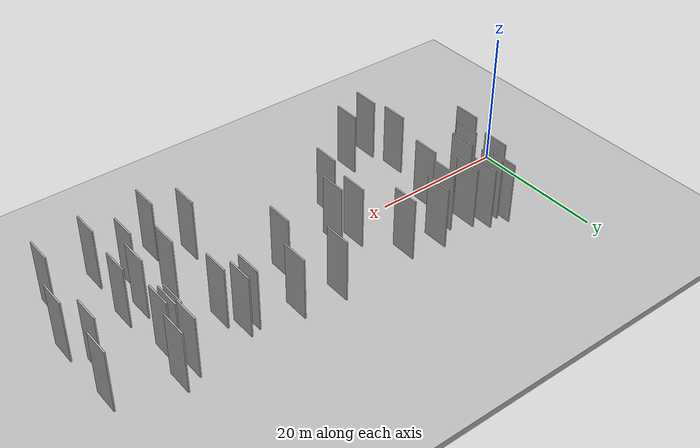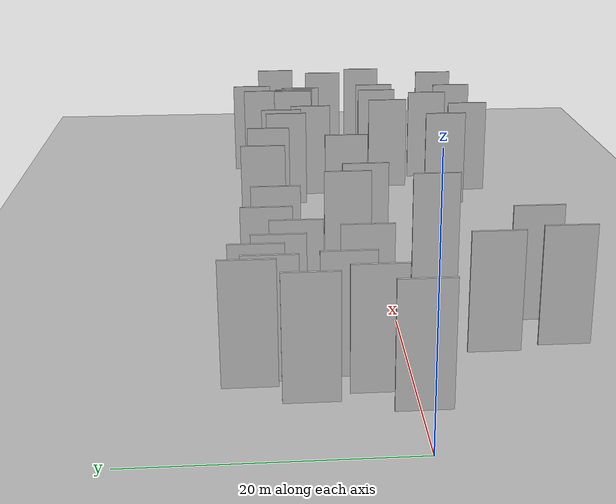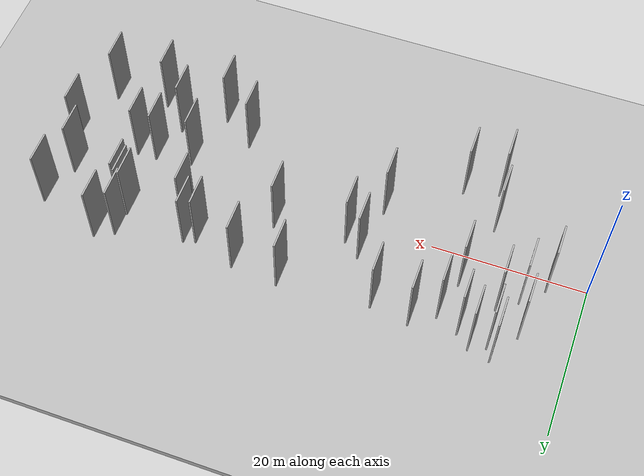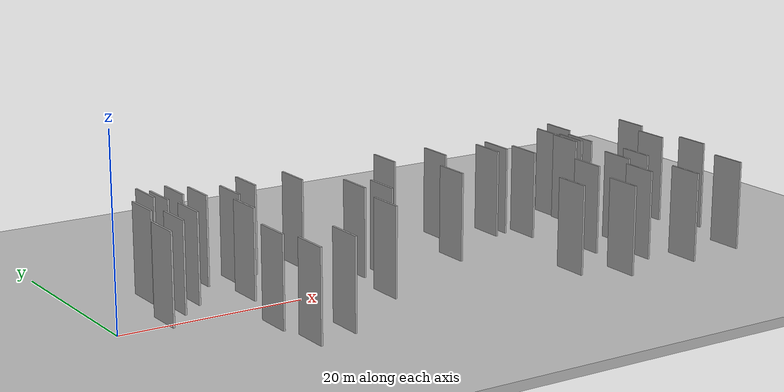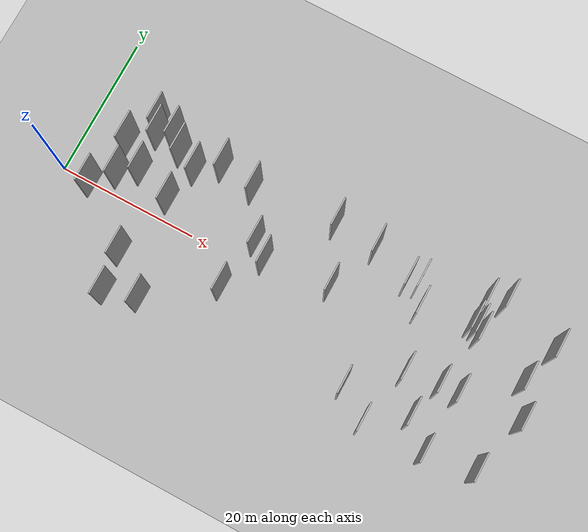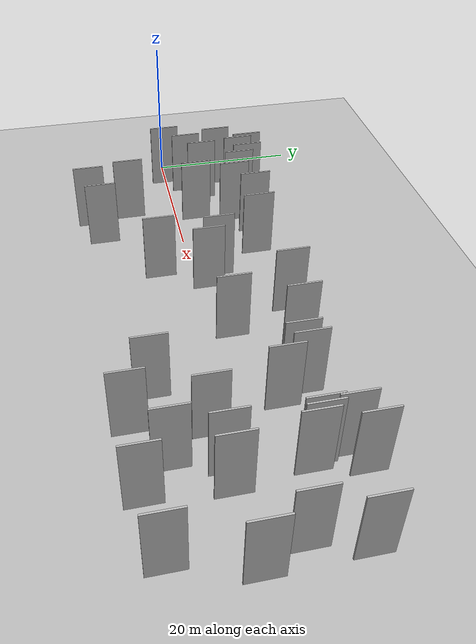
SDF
<?xml version="1.0" encoding="utf-8"?>

<sdf version="1.6">

   <world name="default">

      <gui fullscreen="0">

         <camera name="user_camera">

            <pose>-15 0 4.57585 0 0 0</pose>

            <view_controller>orbit</view_controller>

         </camera>

      </gui>

      <scene>

         <sky>

           <clouds>

             <speed>12</speed>

           </clouds>

         </sky>

         <ambient>0.4 0.4 0.4 1</ambient>

         <background>0.7 0.7 0.7 1</background>

         <shadows>1</shadows>

      </scene>

      <gravity>0 0 -9.8066</gravity>

      <magnetic_field>6e-06 2.3e-05 -4.2e-05</magnetic_field>

      <physics default="0" name="default_physics" type="ode">

         <ode>

            <solver>

               <type>quick</type>

               <iters>10</iters>

               <sor>1.0</sor>

               <use_dynamic_moi_rescaling>0</use_dynamic_moi_rescaling>

            </solver>

            <constraints>

               <cfm>0</cfm>

               <erp>0.2</erp>

               <contact_max_correcting_vel>100</contact_max_correcting_vel>

               <contact_surface_layer>0.001</contact_surface_layer>

            </constraints>

         </ode>

         <max_step_size>0.004</max_step_size>

         <real_time_factor>1</real_time_factor>

         <real_time_update_rate>250</real_time_update_rate>

      </physics>

      <light name="sun" type="directional">

         <cast_shadows>1</cast_shadows>

         <pose>0 0 10 0 0 0</pose>

         <diffuse>0.8 0.8 0.8 1</diffuse>

         <specular>0.2 0.2 0.2 1</specular>

         <attenuation>

            <range>1000</range>

            <constant>0.9</constant>

            <linear>0.01</linear>

            <quadratic>0.001</quadratic>

         </attenuation>

         <direction>-0.5 0.1 -0.9</direction>

      </light>

      <include>

         <name>ground_plane_1</name>

         <uri>model://HANNAS_ground_plane</uri>

         <pose>0 0 0  0 0 0</pose>

      </include>

      <include>

         <name>ground_plane_2</name>

         <uri>model://HANNAS_ground_plane</uri>

         <pose>100 0 0  0 0 0</pose>

      </include>

      <model name="HANNAS_wall_1">

         <static>1</static>

         <pose frame="">60.2114 -10.8449 0.0 0.000000 0.000000 1.570796</pose>

         <link name="link">

            <pose frame="">0 0 5.00 0 0 0</pose>

            <collision name="collision">

               <geometry>

                  <box>

                     <size>4.00 0.2 10.00</size>

                  </box>

               </geometry>

               <max_contacts>10</max_contacts>

               <surface>

                  <contact>

                     <ode/>

                  </contact>

                  <bounce/>

                  <friction>

                     <torsional>

                        <ode/>

                     </torsional>

                     <ode/>

                  </friction>

               </surface>

            </collision>

            <visual name="visual">

               <cast_shadows>0</cast_shadows>

               <geometry>

                  <box>

                     <size>4.00 0.2 10.00</size>

                  </box>

               </geometry>

               <material>

                  <script>

                     <uri>model://HANNAS_wall/materials/scripts</uri>

                     <uri>model://HANNAS_wall/materials/textures</uri>

                     <name>vrc/HANNAS_wall</name>

                  </script>

               </material>

            </visual>

            <self_collide>0</self_collide>

            <enable_wind>0</enable_wind>

            <kinematic>0</kinematic>

         </link>

      </model>

      <model name="HANNAS_wall_2">

         <static>1</static>

         <pose frame="">16.5637 7.9325 0.0 0.000000 0.000000 1.570796</pose>

         <link name="link">

            <pose frame="">0 0 5.00 0 0 0</pose>

            <collision name="collision">

               <geometry>

                  <box>

                     <size>4.00 0.2 10.00</size>

                  </box>

               </geometry>

               <max_contacts>10</max_contacts>

               <surface>

                  <contact>

                     <ode/>

                  </contact>

                  <bounce/>

                  <friction>

                     <torsional>

                        <ode/>

                     </torsional>

                     <ode/>

                  </friction>

               </surface>

            </collision>

            <visual name="visual">

               <cast_shadows>0</cast_shadows>

               <geometry>

                  <box>

                     <size>4.00 0.2 10.00</size>

                  </box>

               </geometry>

               <material>

                  <script>

                     <uri>model://HANNAS_wall/materials/scripts</uri>

                     <uri>model://HANNAS_wall/materials/textures</uri>

                     <name>vrc/HANNAS_wall</name>

                  </script>

               </material>

            </visual>

            <self_collide>0</self_collide>

            <enable_wind>0</enable_wind>

            <kinematic>0</kinematic>

         </link>

      </model>

      <model name="HANNAS_wall_3">

         <static>1</static>

         <pose frame="">24.6656 9.3183 0.0 0.000000 0.000000 1.570796</pose>

         <link name="link">

            <pose frame="">0 0 5.00 0 0 0</pose>

            <collision name="collision">

               <geometry>

                  <box>

                     <size>4.00 0.2 10.00</size>

                  </box>

               </geometry>

               <max_contacts>10</max_contacts>

               <surface>

                  <contact>

                     <ode/>

                  </contact>

                  <bounce/>

                  <friction>

                     <torsional>

                        <ode/>

                     </torsional>

                     <ode/>

                  </friction>

               </surface>

            </collision>

            <visual name="visual">

               <cast_shadows>0</cast_shadows>

               <geometry>

                  <box>

                     <size>4.00 0.2 10.00</size>

                  </box>

               </geometry>

               <material>

                  <script>

                     <uri>model://HANNAS_wall/materials/scripts</uri>

                     <uri>model://HANNAS_wall/materials/textures</uri>

                     <name>vrc/HANNAS_wall</name>

                  </script>

               </material>

            </visual>

            <self_collide>0</self_collide>

            <enable_wind>0</enable_wind>

            <kinematic>0</kinematic>

         </link>

      </model>

      <model name="HANNAS_wall_4">

         <static>1</static>

         <pose frame="">11.8476 10.8924 0.0 0.000000 0.000000 1.570796</pose>

         <link name="link">

            <pose frame="">0 0 5.00 0 0 0</pose>

            <collision name="collision">

               <geometry>

                  <box>

                     <size>4.00 0.2 10.00</size>

                  </box>

               </geometry>

               <max_contacts>10</max_contacts>

               <surface>

                  <contact>

                     <ode/>

                  </contact>

                  <bounce/>

                  <friction>

                     <torsional>

                        <ode/>

                     </torsional>

                     <ode/>

                  </friction>

               </surface>

            </collision>

            <visual name="visual">

               <cast_shadows>0</cast_shadows>

               <geometry>

                  <box>

                     <size>4.00 0.2 10.00</size>

                  </box>

               </geometry>

               <material>

                  <script>

                     <uri>model://HANNAS_wall/materials/scripts</uri>

                     <uri>model://HANNAS_wall/materials/textures</uri>

                     <name>vrc/HANNAS_wall</name>

                  </script>

               </material>

            </visual>

            <self_collide>0</self_collide>

            <enable_wind>0</enable_wind>

            <kinematic>0</kinematic>

         </link>

      </model>

      <model name="HANNAS_wall_5">

         <static>1</static>

         <pose frame="">18.4809 -10.7045 0.0 0.000000 0.000000 1.570796</pose>

         <link name="link">

            <pose frame="">0 0 5.00 0 0 0</pose>

            <collision name="collision">

               <geometry>

                  <box>

                     <size>4.00 0.2 10.00</size>

                  </box>

               </geometry>

               <max_contacts>10</max_contacts>

               <surface>

                  <contact>

                     <ode/>

                  </contact>

                  <bounce/>

                  <friction>

                     <torsional>

                        <ode/>

                     </torsional>

                     <ode/>

                  </friction>

               </surface>

            </collision>

            <visual name="visual">

               <cast_shadows>0</cast_shadows>

               <geometry>

                  <box>

                     <size>4.00 0.2 10.00</size>

                  </box>

               </geometry>

               <material>

                  <script>

                     <uri>model://HANNAS_wall/materials/scripts</uri>

                     <uri>model://HANNAS_wall/materials/textures</uri>

                     <name>vrc/HANNAS_wall</name>

                  </script>

               </material>

            </visual>

            <self_collide>0</self_collide>

            <enable_wind>0</enable_wind>

            <kinematic>0</kinematic>

         </link>

      </model>

      <model name="HANNAS_wall_6">

         <static>1</static>

         <pose frame="">42.7829 9.7356 0.0 0.000000 0.000000 1.570796</pose>

         <link name="link">

            <pose frame="">0 0 5.00 0 0 0</pose>

            <collision name="collision">

               <geometry>

                  <box>

                     <size>4.00 0.2 10.00</size>

                  </box>

               </geometry>

               <max_contacts>10</max_contacts>

               <surface>

                  <contact>

                     <ode/>

                  </contact>

                  <bounce/>

                  <friction>

                     <torsional>

                        <ode/>

                     </torsional>

                     <ode/>

                  </friction>

               </surface>

            </collision>

            <visual name="visual">

               <cast_shadows>0</cast_shadows>

               <geometry>

                  <box>

                     <size>4.00 0.2 10.00</size>

                  </box>

               </geometry>

               <material>

                  <script>

                     <uri>model://HANNAS_wall/materials/scripts</uri>

                     <uri>model://HANNAS_wall/materials/textures</uri>

                     <name>vrc/HANNAS_wall</name>

                  </script>

               </material>

            </visual>

            <self_collide>0</self_collide>

            <enable_wind>0</enable_wind>

            <kinematic>0</kinematic>

         </link>

      </model>

      <model name="HANNAS_wall_7">

         <static>1</static>

         <pose frame="">58.5317 10.1907 0.0 0.000000 0.000000 1.570796</pose>

         <link name="link">

            <pose frame="">0 0 5.00 0 0 0</pose>

            <collision name="collision">

               <geometry>

                  <box>

                     <size>4.00 0.2 10.00</size>

                  </box>

               </geometry>

               <max_contacts>10</max_contacts>

               <surface>

                  <contact>

                     <ode/>

                  </contact>

                  <bounce/>

                  <friction>

                     <torsional>

                        <ode/>

                     </torsional>

                     <ode/>

                  </friction>

               </surface>

            </collision>

            <visual name="visual">

               <cast_shadows>0</cast_shadows>

               <geometry>

                  <box>

                     <size>4.00 0.2 10.00</size>

                  </box>

               </geometry>

               <material>

                  <script>

                     <uri>model://HANNAS_wall/materials/scripts</uri>

                     <uri>model://HANNAS_wall/materials/textures</uri>

                     <name>vrc/HANNAS_wall</name>

                  </script>

               </material>

            </visual>

            <self_collide>0</self_collide>

            <enable_wind>0</enable_wind>

            <kinematic>0</kinematic>

         </link>

      </model>

      <model name="HANNAS_wall_8">

         <static>1</static>

         <pose frame="">30.5337 1.4979 0.0 0.000000 0.000000 1.570796</pose>

         <link name="link">

            <pose frame="">0 0 5.00 0 0 0</pose>

            <collision name="collision">

               <geometry>

                  <box>

                     <size>4.00 0.2 10.00</size>

                  </box>

               </geometry>

               <max_contacts>10</max_contacts>

               <surface>

                  <contact>

                     <ode/>

                  </contact>

                  <bounce/>

                  <friction>

                     <torsional>

                        <ode/>

                     </torsional>

                     <ode/>

                  </friction>

               </surface>

            </collision>

            <visual name="visual">

               <cast_shadows>0</cast_shadows>

               <geometry>

                  <box>

                     <size>4.00 0.2 10.00</size>

                  </box>

               </geometry>

               <material>

                  <script>

                     <uri>model://HANNAS_wall/materials/scripts</uri>

                     <uri>model://HANNAS_wall/materials/textures</uri>

                     <name>vrc/HANNAS_wall</name>

                  </script>

               </material>

            </visual>

            <self_collide>0</self_collide>

            <enable_wind>0</enable_wind>

            <kinematic>0</kinematic>

         </link>

      </model>

      <model name="HANNAS_wall_9">

         <static>1</static>

         <pose frame="">47.3359 -8.2029 0.0 0.000000 0.000000 1.570796</pose>

         <link name="link">

            <pose frame="">0 0 5.00 0 0 0</pose>

            <collision name="collision">

               <geometry>

                  <box>

                     <size>4.00 0.2 10.00</size>

                  </box>

               </geometry>

               <max_contacts>10</max_contacts>

               <surface>

                  <contact>

                     <ode/>

                  </contact>

                  <bounce/>

                  <friction>

                     <torsional>

                        <ode/>

                     </torsional>

                     <ode/>

                  </friction>

               </surface>

            </collision>

            <visual name="visual">

               <cast_shadows>0</cast_shadows>

               <geometry>

                  <box>

                     <size>4.00 0.2 10.00</size>

                  </box>

               </geometry>

               <material>

                  <script>

                     <uri>model://HANNAS_wall/materials/scripts</uri>

                     <uri>model://HANNAS_wall/materials/textures</uri>

                     <name>vrc/HANNAS_wall</name>

                  </script>

               </material>

            </visual>

            <self_collide>0</self_collide>

            <enable_wind>0</enable_wind>

            <kinematic>0</kinematic>

         </link>

      </model>

      <model name="HANNAS_wall_10">

         <static>1</static>

         <pose frame="">60.7906 -2.2281 0.0 0.000000 0.000000 1.570796</pose>

         <link name="link">

            <pose frame="">0 0 5.00 0 0 0</pose>

            <collision name="collision">

               <geometry>

                  <box>

                     <size>4.00 0.2 10.00</size>

                  </box>

               </geometry>

               <max_contacts>10</max_contacts>

               <surface>

                  <contact>

                     <ode/>

                  </contact>

                  <bounce/>

                  <friction>

                     <torsional>

                        <ode/>

                     </torsional>

                     <ode/>

                  </friction>

               </surface>

            </collision>

            <visual name="visual">

               <cast_shadows>0</cast_shadows>

               <geometry>

                  <box>

                     <size>4.00 0.2 10.00</size>

                  </box>

               </geometry>

               <material>

                  <script>

                     <uri>model://HANNAS_wall/materials/scripts</uri>

                     <uri>model://HANNAS_wall/materials/textures</uri>

                     <name>vrc/HANNAS_wall</name>

                  </script>

               </material>

            </visual>

            <self_collide>0</self_collide>

            <enable_wind>0</enable_wind>

            <kinematic>0</kinematic>

         </link>

      </model>

      <model name="HANNAS_wall_11">

         <static>1</static>

         <pose frame="">56.7300 -7.6034 0.0 0.000000 0.000000 1.570796</pose>

         <link name="link">

            <pose frame="">0 0 5.00 0 0 0</pose>

            <collision name="collision">

               <geometry>

                  <box>

                     <size>4.00 0.2 10.00</size>

                  </box>

               </geometry>

               <max_contacts>10</max_contacts>

               <surface>

                  <contact>

                     <ode/>

                  </contact>

                  <bounce/>

                  <friction>

                     <torsional>

                        <ode/>

                     </torsional>

                     <ode/>

                  </friction>

               </surface>

            </collision>

            <visual name="visual">

               <cast_shadows>0</cast_shadows>

               <geometry>

                  <box>

                     <size>4.00 0.2 10.00</size>

                  </box>

               </geometry>

               <material>

                  <script>

                     <uri>model://HANNAS_wall/materials/scripts</uri>

                     <uri>model://HANNAS_wall/materials/textures</uri>

                     <name>vrc/HANNAS_wall</name>

                  </script>

               </material>

            </visual>

            <self_collide>0</self_collide>

            <enable_wind>0</enable_wind>

            <kinematic>0</kinematic>

         </link>

      </model>

      <model name="HANNAS_wall_12">

         <static>1</static>

         <pose frame="">69.1773 8.6387 0.0 0.000000 0.000000 1.570796</pose>

         <link name="link">

            <pose frame="">0 0 5.00 0 0 0</pose>

            <collision name="collision">

               <geometry>

                  <box>

                     <size>4.00 0.2 10.00</size>

                  </box>

               </geometry>

               <max_contacts>10</max_contacts>

               <surface>

                  <contact>

                     <ode/>

                  </contact>

                  <bounce/>

                  <friction>

                     <torsional>

                        <ode/>

                     </torsional>

                     <ode/>

                  </friction>

               </surface>

            </collision>

            <visual name="visual">

               <cast_shadows>0</cast_shadows>

               <geometry>

                  <box>

                     <size>4.00 0.2 10.00</size>

                  </box>

               </geometry>

               <material>

                  <script>

                     <uri>model://HANNAS_wall/materials/scripts</uri>

                     <uri>model://HANNAS_wall/materials/textures</uri>

                     <name>vrc/HANNAS_wall</name>

                  </script>

               </material>

            </visual>

            <self_collide>0</self_collide>

            <enable_wind>0</enable_wind>

            <kinematic>0</kinematic>

         </link>

      </model>

      <model name="HANNAS_wall_13">

         <static>1</static>

         <pose frame="">58.1970 -2.2655 0.0 0.000000 0.000000 1.570796</pose>

         <link name="link">

            <pose frame="">0 0 5.00 0 0 0</pose>

            <collision name="collision">

               <geometry>

                  <box>

                     <size>4.00 0.2 10.00</size>

                  </box>

               </geometry>

               <max_contacts>10</max_contacts>

               <surface>

                  <contact>

                     <ode/>

                  </contact>

                  <bounce/>

                  <friction>

                     <torsional>

                        <ode/>

                     </torsional>

                     <ode/>

                  </friction>

               </surface>

            </collision>

            <visual name="visual">

               <cast_shadows>0</cast_shadows>

               <geometry>

                  <box>

                     <size>4.00 0.2 10.00</size>

                  </box>

               </geometry>

               <material>

                  <script>

                     <uri>model://HANNAS_wall/materials/scripts</uri>

                     <uri>model://HANNAS_wall/materials/textures</uri>

                     <name>vrc/HANNAS_wall</name>

                  </script>

               </material>

            </visual>

            <self_collide>0</self_collide>

            <enable_wind>0</enable_wind>

            <kinematic>0</kinematic>

         </link>

      </model>

      <model name="HANNAS_wall_14">

         <static>1</static>

         <pose frame="">7.5982 2.6572 0.0 0.000000 0.000000 1.570796</pose>

         <link name="link">

            <pose frame="">0 0 5.00 0 0 0</pose>

            <collision name="collision">

               <geometry>

                  <box>

                     <size>4.00 0.2 10.00</size>

                  </box>

               </geometry>

               <max_contacts>10</max_contacts>

               <surface>

                  <contact>

                     <ode/>

                  </contact>

                  <bounce/>

                  <friction>

                     <torsional>

                        <ode/>

                     </torsional>

                     <ode/>

                  </friction>

               </surface>

            </collision>

            <visual name="visual">

               <cast_shadows>0</cast_shadows>

               <geometry>

                  <box>

                     <size>4.00 0.2 10.00</size>

                  </box>

               </geometry>

               <material>

                  <script>

                     <uri>model://HANNAS_wall/materials/scripts</uri>

                     <uri>model://HANNAS_wall/materials/textures</uri>

                     <name>vrc/HANNAS_wall</name>

                  </script>

               </material>

            </visual>

            <self_collide>0</self_collide>

            <enable_wind>0</enable_wind>

            <kinematic>0</kinematic>

         </link>

      </model>

      <model name="HANNAS_wall_15">

         <static>1</static>

         <pose frame="">69.3957 -1.5207 0.0 0.000000 0.000000 1.570796</pose>

         <link name="link">

            <pose frame="">0 0 5.00 0 0 0</pose>

            <collision name="collision">

               <geometry>

                  <box>

                     <size>4.00 0.2 10.00</size>

                  </box>

               </geometry>

               <max_contacts>10</max_contacts>

               <surface>

                  <contact>

                     <ode/>

                  </contact>

                  <bounce/>

                  <friction>

                     <torsional>

                        <ode/>

                     </torsional>

                     <ode/>

                  </friction>

               </surface>

            </collision>

            <visual name="visual">

               <cast_shadows>0</cast_shadows>

               <geometry>

                  <box>

                     <size>4.00 0.2 10.00</size>

                  </box>

               </geometry>

               <material>

                  <script>

                     <uri>model://HANNAS_wall/materials/scripts</uri>

                     <uri>model://HANNAS_wall/materials/textures</uri>

                     <name>vrc/HANNAS_wall</name>

                  </script>

               </material>

            </visual>

            <self_collide>0</self_collide>

            <enable_wind>0</enable_wind>

            <kinematic>0</kinematic>

         </link>

      </model>

      <model name="HANNAS_wall_16">

         <static>1</static>

         <pose frame="">13.6252 9.2840 0.0 0.000000 0.000000 1.570796</pose>

         <link name="link">

            <pose frame="">0 0 5.00 0 0 0</pose>

            <collision name="collision">

               <geometry>

                  <box>

                     <size>4.00 0.2 10.00</size>

                  </box>

               </geometry>

               <max_contacts>10</max_contacts>

               <surface>

                  <contact>

                     <ode/>

                  </contact>

                  <bounce/>

                  <friction>

                     <torsional>

                        <ode/>

                     </torsional>

                     <ode/>

                  </friction>

               </surface>

            </collision>

            <visual name="visual">

               <cast_shadows>0</cast_shadows>

               <geometry>

                  <box>

                     <size>4.00 0.2 10.00</size>

                  </box>

               </geometry>

               <material>

                  <script>

                     <uri>model://HANNAS_wall/materials/scripts</uri>

                     <uri>model://HANNAS_wall/materials/textures</uri>

                     <name>vrc/HANNAS_wall</name>

                  </script>

               </material>

            </visual>

            <self_collide>0</self_collide>

            <enable_wind>0</enable_wind>

            <kinematic>0</kinematic>

         </link>

      </model>

      <model name="HANNAS_wall_17">

         <static>1</static>

         <pose frame="">13.9679 -11.9583 0.0 0.000000 0.000000 1.570796</pose>

         <link name="link">

            <pose frame="">0 0 5.00 0 0 0</pose>

            <collision name="collision">

               <geometry>

                  <box>

                     <size>4.00 0.2 10.00</size>

                  </box>

               </geometry>

               <max_contacts>10</max_contacts>

               <surface>

                  <contact>

                     <ode/>

                  </contact>

                  <bounce/>

                  <friction>

                     <torsional>

                        <ode/>

                     </torsional>

                     <ode/>

                  </friction>

               </surface>

            </collision>

            <visual name="visual">

               <cast_shadows>0</cast_shadows>

               <geometry>

                  <box>

                     <size>4.00 0.2 10.00</size>

                  </box>

               </geometry>

               <material>

                  <script>

                     <uri>model://HANNAS_wall/materials/scripts</uri>

                     <uri>model://HANNAS_wall/materials/textures</uri>

                     <name>vrc/HANNAS_wall</name>

                  </script>

               </material>

            </visual>

            <self_collide>0</self_collide>

            <enable_wind>0</enable_wind>

            <kinematic>0</kinematic>

         </link>

      </model>

      <model name="HANNAS_wall_18">

         <static>1</static>

         <pose frame="">60.9121 11.3769 0.0 0.000000 0.000000 1.570796</pose>

         <link name="link">

            <pose frame="">0 0 5.00 0 0 0</pose>

            <collision name="collision">

               <geometry>

                  <box>

                     <size>4.00 0.2 10.00</size>

                  </box>

               </geometry>

               <max_contacts>10</max_contacts>

               <surface>

                  <contact>

                     <ode/>

                  </contact>

                  <bounce/>

                  <friction>

                     <torsional>

                        <ode/>

                     </torsional>

                     <ode/>

                  </friction>

               </surface>

            </collision>

            <visual name="visual">

               <cast_shadows>0</cast_shadows>

               <geometry>

                  <box>

                     <size>4.00 0.2 10.00</size>

                  </box>

               </geometry>

               <material>

                  <script>

                     <uri>model://HANNAS_wall/materials/scripts</uri>

                     <uri>model://HANNAS_wall/materials/textures</uri>

                     <name>vrc/HANNAS_wall</name>

                  </script>

               </material>

            </visual>

            <self_collide>0</self_collide>

            <enable_wind>0</enable_wind>

            <kinematic>0</kinematic>

         </link>

      </model>

      <model name="HANNAS_wall_19">

         <static>1</static>

         <pose frame="">51.3455 5.2957 0.0 0.000000 0.000000 1.570796</pose>

         <link name="link">

            <pose frame="">0 0 5.00 0 0 0</pose>

            <collision name="collision">

               <geometry>

                  <box>

                     <size>4.00 0.2 10.00</size>

                  </box>

               </geometry>

               <max_contacts>10</max_contacts>

               <surface>

                  <contact>

                     <ode/>

                  </contact>

                  <bounce/>

                  <friction>

                     <torsional>

                        <ode/>

                     </torsional>

                     <ode/>

                  </friction>

               </surface>

            </collision>

            <visual name="visual">

               <cast_shadows>0</cast_shadows>

               <geometry>

                  <box>

                     <size>4.00 0.2 10.00</size>

                  </box>

               </geometry>

               <material>

                  <script>

                     <uri>model://HANNAS_wall/materials/scripts</uri>

                     <uri>model://HANNAS_wall/materials/textures</uri>

                     <name>vrc/HANNAS_wall</name>

                  </script>

               </material>

            </visual>

            <self_collide>0</self_collide>

            <enable_wind>0</enable_wind>

            <kinematic>0</kinematic>

         </link>

      </model>

      <model name="HANNAS_wall_20">

         <static>1</static>

         <pose frame="">39.8461 2.4485 0.0 0.000000 0.000000 1.570796</pose>

         <link name="link">

            <pose frame="">0 0 5.00 0 0 0</pose>

            <collision name="collision">

               <geometry>

                  <box>

                     <size>4.00 0.2 10.00</size>

                  </box>

               </geometry>

               <max_contacts>10</max_contacts>

               <surface>

                  <contact>

                     <ode/>

                  </contact>

                  <bounce/>

                  <friction>

                     <torsional>

                        <ode/>

                     </torsional>

                     <ode/>

                  </friction>

               </surface>

            </collision>

            <visual name="visual">

               <cast_shadows>0</cast_shadows>

               <geometry>

                  <box>

                     <size>4.00 0.2 10.00</size>

                  </box>

               </geometry>

               <material>

                  <script>

                     <uri>model://HANNAS_wall/materials/scripts</uri>

                     <uri>model://HANNAS_wall/materials/textures</uri>

                     <name>vrc/HANNAS_wall</name>

                  </script>

               </material>

            </visual>

            <self_collide>0</self_collide>

            <enable_wind>0</enable_wind>

            <kinematic>0</kinematic>

         </link>

      </model>

      <model name="HANNAS_wall_21">

         <static>1</static>

         <pose frame="">10.1060 4.5273 0.0 0.000000 0.000000 1.570796</pose>

         <link name="link">

            <pose frame="">0 0 5.00 0 0 0</pose>

            <collision name="collision">

               <geometry>

                  <box>

                     <size>4.00 0.2 10.00</size>

                  </box>

               </geometry>

               <max_contacts>10</max_contacts>

               <surface>

                  <contact>

                     <ode/>

                  </contact>

                  <bounce/>

                  <friction>

                     <torsional>

                        <ode/>

                     </torsional>

                     <ode/>

                  </friction>

               </surface>

            </collision>

            <visual name="visual">

               <cast_shadows>0</cast_shadows>

               <geometry>

                  <box>

                     <size>4.00 0.2 10.00</size>

                  </box>

               </geometry>

               <material>

                  <script>

                     <uri>model://HANNAS_wall/materials/scripts</uri>

                     <uri>model://HANNAS_wall/materials/textures</uri>

                     <name>vrc/HANNAS_wall</name>

                  </script>

               </material>

            </visual>

            <self_collide>0</self_collide>

            <enable_wind>0</enable_wind>

            <kinematic>0</kinematic>

         </link>

      </model>

      <model name="HANNAS_wall_22">

         <static>1</static>

         <pose frame="">58.3121 6.9121 0.0 0.000000 0.000000 1.570796</pose>

         <link name="link">

            <pose frame="">0 0 5.00 0 0 0</pose>

            <collision name="collision">

               <geometry>

                  <box>

                     <size>4.00 0.2 10.00</size>

                  </box>

               </geometry>

               <max_contacts>10</max_contacts>

               <surface>

                  <contact>

                     <ode/>

                  </contact>

                  <bounce/>

                  <friction>

                     <torsional>

                        <ode/>

                     </torsional>

                     <ode/>

                  </friction>

               </surface>

            </collision>

            <visual name="visual">

               <cast_shadows>0</cast_shadows>

               <geometry>

                  <box>

                     <size>4.00 0.2 10.00</size>

                  </box>

               </geometry>

               <material>

                  <script>

                     <uri>model://HANNAS_wall/materials/scripts</uri>

                     <uri>model://HANNAS_wall/materials/textures</uri>

                     <name>vrc/HANNAS_wall</name>

                  </script>

               </material>

            </visual>

            <self_collide>0</self_collide>

            <enable_wind>0</enable_wind>

            <kinematic>0</kinematic>

         </link>

      </model>

      <model name="HANNAS_wall_23">

         <static>1</static>

         <pose frame="">9.7179 9.9721 0.0 0.000000 0.000000 1.570796</pose>

         <link name="link">

            <pose frame="">0 0 5.00 0 0 0</pose>

            <collision name="collision">

               <geometry>

                  <box>

                     <size>4.00 0.2 10.00</size>

                  </box>

               </geometry>

               <max_contacts>10</max_contacts>

               <surface>

                  <contact>

                     <ode/>

                  </contact>

                  <bounce/>

                  <friction>

                     <torsional>

                        <ode/>

                     </torsional>

                     <ode/>

                  </friction>

               </surface>

            </collision>

            <visual name="visual">

               <cast_shadows>0</cast_shadows>

               <geometry>

                  <box>

                     <size>4.00 0.2 10.00</size>

                  </box>

               </geometry>

               <material>

                  <script>

                     <uri>model://HANNAS_wall/materials/scripts</uri>

                     <uri>model://HANNAS_wall/materials/textures</uri>

                     <name>vrc/HANNAS_wall</name>

                  </script>

               </material>

            </visual>

            <self_collide>0</self_collide>

            <enable_wind>0</enable_wind>

            <kinematic>0</kinematic>

         </link>

      </model>

      <model name="HANNAS_wall_24">

         <static>1</static>

         <pose frame="">27.2524 -4.2079 0.0 0.000000 0.000000 1.570796</pose>

         <link name="link">

            <pose frame="">0 0 5.00 0 0 0</pose>

            <collision name="collision">

               <geometry>

                  <box>

                     <size>4.00 0.2 10.00</size>

                  </box>

               </geometry>

               <max_contacts>10</max_contacts>

               <surface>

                  <contact>

                     <ode/>

                  </contact>

                  <bounce/>

                  <friction>

                     <torsional>

                        <ode/>

                     </torsional>

                     <ode/>

                  </friction>

               </surface>

            </collision>

            <visual name="visual">

               <cast_shadows>0</cast_shadows>

               <geometry>

                  <box>

                     <size>4.00 0.2 10.00</size>

                  </box>

               </geometry>

               <material>

                  <script>

                     <uri>model://HANNAS_wall/materials/scripts</uri>

                     <uri>model://HANNAS_wall/materials/textures</uri>

                     <name>vrc/HANNAS_wall</name>

                  </script>

               </material>

            </visual>

            <self_collide>0</self_collide>

            <enable_wind>0</enable_wind>

            <kinematic>0</kinematic>

         </link>

      </model>

      <model name="HANNAS_wall_25">

         <static>1</static>

         <pose frame="">67.0956 -9.8203 0.0 0.000000 0.000000 1.570796</pose>

         <link name="link">

            <pose frame="">0 0 5.00 0 0 0</pose>

            <collision name="collision">

               <geometry>

                  <box>

                     <size>4.00 0.2 10.00</size>

                  </box>

               </geometry>

               <max_contacts>10</max_contacts>

               <surface>

                  <contact>

                     <ode/>

                  </contact>

                  <bounce/>

                  <friction>

                     <torsional>

                        <ode/>

                     </torsional>

                     <ode/>

                  </friction>

               </surface>

            </collision>

            <visual name="visual">

               <cast_shadows>0</cast_shadows>

               <geometry>

                  <box>

                     <size>4.00 0.2 10.00</size>

                  </box>

               </geometry>

               <material>

                  <script>

                     <uri>model://HANNAS_wall/materials/scripts</uri>

                     <uri>model://HANNAS_wall/materials/textures</uri>

                     <name>vrc/HANNAS_wall</name>

                  </script>

               </material>

            </visual>

            <self_collide>0</self_collide>

            <enable_wind>0</enable_wind>

            <kinematic>0</kinematic>

         </link>

      </model>

      <model name="HANNAS_wall_26">

         <static>1</static>

         <pose frame="">53.5062 -2.9831 0.0 0.000000 0.000000 1.570796</pose>

         <link name="link">

            <pose frame="">0 0 5.00 0 0 0</pose>

            <collision name="collision">

               <geometry>

                  <box>

                     <size>4.00 0.2 10.00</size>

                  </box>

               </geometry>

               <max_contacts>10</max_contacts>

               <surface>

                  <contact>

                     <ode/>

                  </contact>

                  <bounce/>

                  <friction>

                     <torsional>

                        <ode/>

                     </torsional>

                     <ode/>

                  </friction>

               </surface>

            </collision>

            <visual name="visual">

               <cast_shadows>0</cast_shadows>

               <geometry>

                  <box>

                     <size>4.00 0.2 10.00</size>

                  </box>

               </geometry>

               <material>

                  <script>

                     <uri>model://HANNAS_wall/materials/scripts</uri>

                     <uri>model://HANNAS_wall/materials/textures</uri>

                     <name>vrc/HANNAS_wall</name>

                  </script>

               </material>

            </visual>

            <self_collide>0</self_collide>

            <enable_wind>0</enable_wind>

            <kinematic>0</kinematic>

         </link>

      </model>

      <model name="HANNAS_wall_27">

         <static>1</static>

         <pose frame="">8.9436 11.5075 0.0 0.000000 0.000000 1.570796</pose>

         <link name="link">

            <pose frame="">0 0 5.00 0 0 0</pose>

            <collision name="collision">

               <geometry>

                  <box>

                     <size>4.00 0.2 10.00</size>

                  </box>

               </geometry>

               <max_contacts>10</max_contacts>

               <surface>

                  <contact>

                     <ode/>

                  </contact>

                  <bounce/>

                  <friction>

                     <torsional>

                        <ode/>

                     </torsional>

                     <ode/>

                  </friction>

               </surface>

            </collision>

            <visual name="visual">

               <cast_shadows>0</cast_shadows>

               <geometry>

                  <box>

                     <size>4.00 0.2 10.00</size>

                  </box>

               </geometry>

               <material>

                  <script>

                     <uri>model://HANNAS_wall/materials/scripts</uri>

                     <uri>model://HANNAS_wall/materials/textures</uri>

                     <name>vrc/HANNAS_wall</name>

                  </script>

               </material>

            </visual>

            <self_collide>0</self_collide>

            <enable_wind>0</enable_wind>

            <kinematic>0</kinematic>

         </link>

      </model>

      <model name="HANNAS_wall_28">

         <static>1</static>

         <pose frame="">48.3708 7.8922 0.0 0.000000 0.000000 1.570796</pose>

         <link name="link">

            <pose frame="">0 0 5.00 0 0 0</pose>

            <collision name="collision">

               <geometry>

                  <box>

                     <size>4.00 0.2 10.00</size>

                  </box>

               </geometry>

               <max_contacts>10</max_contacts>

               <surface>

                  <contact>

                     <ode/>

                  </contact>

                  <bounce/>

                  <friction>

                     <torsional>

                        <ode/>

                     </torsional>

                     <ode/>

                  </friction>

               </surface>

            </collision>

            <visual name="visual">

               <cast_shadows>0</cast_shadows>

               <geometry>

                  <box>

                     <size>4.00 0.2 10.00</size>

                  </box>

               </geometry>

               <material>

                  <script>

                     <uri>model://HANNAS_wall/materials/scripts</uri>

                     <uri>model://HANNAS_wall/materials/textures</uri>

                     <name>vrc/HANNAS_wall</name>

                  </script>

               </material>

            </visual>

            <self_collide>0</self_collide>

            <enable_wind>0</enable_wind>

            <kinematic>0</kinematic>

         </link>

      </model>

      <model name="HANNAS_wall_29">

         <static>1</static>

         <pose frame="">67.4964 3.1493 0.0 0.000000 0.000000 1.570796</pose>

         <link name="link">

            <pose frame="">0 0 5.00 0 0 0</pose>

            <collision name="collision">

               <geometry>

                  <box>

                     <size>4.00 0.2 10.00</size>

                  </box>

               </geometry>

               <max_contacts>10</max_contacts>

               <surface>

                  <contact>

                     <ode/>

                  </contact>

                  <bounce/>

                  <friction>

                     <torsional>

                        <ode/>

                     </torsional>

                     <ode/>

                  </friction>

               </surface>

            </collision>

            <visual name="visual">

               <cast_shadows>0</cast_shadows>

               <geometry>

                  <box>

                     <size>4.00 0.2 10.00</size>

                  </box>

               </geometry>

               <material>

                  <script>

                     <uri>model://HANNAS_wall/materials/scripts</uri>

                     <uri>model://HANNAS_wall/materials/textures</uri>

                     <name>vrc/HANNAS_wall</name>

                  </script>

               </material>

            </visual>

            <self_collide>0</self_collide>

            <enable_wind>0</enable_wind>

            <kinematic>0</kinematic>

         </link>

      </model>

      <model name="HANNAS_wall_30">

         <static>1</static>

         <pose frame="">4.9089 -0.1021 0.0 0.000000 0.000000 1.570796</pose>

         <link name="link">

            <pose frame="">0 0 5.00 0 0 0</pose>

            <collision name="collision">

               <geometry>

                  <box>

                     <size>4.00 0.2 10.00</size>

                  </box>

               </geometry>

               <max_contacts>10</max_contacts>

               <surface>

                  <contact>

                     <ode/>

                  </contact>

                  <bounce/>

                  <friction>

                     <torsional>

                        <ode/>

                     </torsional>

                     <ode/>

                  </friction>

               </surface>

            </collision>

            <visual name="visual">

               <cast_shadows>0</cast_shadows>

               <geometry>

                  <box>

                     <size>4.00 0.2 10.00</size>

                  </box>

               </geometry>

               <material>

                  <script>

                     <uri>model://HANNAS_wall/materials/scripts</uri>

                     <uri>model://HANNAS_wall/materials/textures</uri>

                     <name>vrc/HANNAS_wall</name>

                  </script>

               </material>

            </visual>

            <self_collide>0</self_collide>

            <enable_wind>0</enable_wind>

            <kinematic>0</kinematic>

         </link>

      </model>

      <model name="HANNAS_wall_31">

         <static>1</static>

         <pose frame="">15.3097 2.7449 0.0 0.000000 0.000000 1.570796</pose>

         <link name="link">

            <pose frame="">0 0 5.00 0 0 0</pose>

            <collision name="collision">

               <geometry>

                  <box>

                     <size>4.00 0.2 10.00</size>

                  </box>

               </geometry>

               <max_contacts>10</max_contacts>

               <surface>

                  <contact>

                     <ode/>

                  </contact>

                  <bounce/>

                  <friction>

                     <torsional>

                        <ode/>

                     </torsional>

                     <ode/>

                  </friction>

               </surface>

            </collision>

            <visual name="visual">

               <cast_shadows>0</cast_shadows>

               <geometry>

                  <box>

                     <size>4.00 0.2 10.00</size>

                  </box>

               </geometry>

               <material>

                  <script>

                     <uri>model://HANNAS_wall/materials/scripts</uri>

                     <uri>model://HANNAS_wall/materials/textures</uri>

                     <name>vrc/HANNAS_wall</name>

                  </script>

               </material>

            </visual>

            <self_collide>0</self_collide>

            <enable_wind>0</enable_wind>

            <kinematic>0</kinematic>

         </link>

      </model>

      <model name="HANNAS_wall_32">

         <static>1</static>

         <pose frame="">28.3535 3.1922 0.0 0.000000 0.000000 1.570796</pose>

         <link name="link">

            <pose frame="">0 0 5.00 0 0 0</pose>

            <collision name="collision">

               <geometry>

                  <box>

                     <size>4.00 0.2 10.00</size>

                  </box>

               </geometry>

               <max_contacts>10</max_contacts>

               <surface>

                  <contact>

                     <ode/>

                  </contact>

                  <bounce/>

                  <friction>

                     <torsional>

                        <ode/>

                     </torsional>

                     <ode/>

                  </friction>

               </surface>

            </collision>

            <visual name="visual">

               <cast_shadows>0</cast_shadows>

               <geometry>

                  <box>

                     <size>4.00 0.2 10.00</size>

                  </box>

               </geometry>

               <material>

                  <script>

                     <uri>model://HANNAS_wall/materials/scripts</uri>

                     <uri>model://HANNAS_wall/materials/textures</uri>

                     <name>vrc/HANNAS_wall</name>

                  </script>

               </material>

            </visual>

            <self_collide>0</self_collide>

            <enable_wind>0</enable_wind>

            <kinematic>0</kinematic>

         </link>

      </model>

      <model name="HANNAS_wall_33">

         <static>1</static>

         <pose frame="">59.7584 6.0327 0.0 0.000000 0.000000 1.570796</pose>

         <link name="link">

            <pose frame="">0 0 5.00 0 0 0</pose>

            <collision name="collision">

               <geometry>

                  <box>

                     <size>4.00 0.2 10.00</size>

                  </box>

               </geometry>

               <max_contacts>10</max_contacts>

               <surface>

                  <contact>

                     <ode/>

                  </contact>

                  <bounce/>

                  <friction>

                     <torsional>

                        <ode/>

                     </torsional>

                     <ode/>

                  </friction>

               </surface>

            </collision>

            <visual name="visual">

               <cast_shadows>0</cast_shadows>

               <geometry>

                  <box>

                     <size>4.00 0.2 10.00</size>

                  </box>

               </geometry>

               <material>

                  <script>

                     <uri>model://HANNAS_wall/materials/scripts</uri>

                     <uri>model://HANNAS_wall/materials/textures</uri>

                     <name>vrc/HANNAS_wall</name>

                  </script>

               </material>

            </visual>

            <self_collide>0</self_collide>

            <enable_wind>0</enable_wind>

            <kinematic>0</kinematic>

         </link>

      </model>

      <model name="HANNAS_wall_34">

         <static>1</static>

         <pose frame="">6.5289 7.3214 0.0 0.000000 0.000000 1.570796</pose>

         <link name="link">

            <pose frame="">0 0 5.00 0 0 0</pose>

            <collision name="collision">

               <geometry>

                  <box>

                     <size>4.00 0.2 10.00</size>

                  </box>

               </geometry>

               <max_contacts>10</max_contacts>

               <surface>

                  <contact>

                     <ode/>

                  </contact>

                  <bounce/>

                  <friction>

                     <torsional>

                        <ode/>

                     </torsional>

                     <ode/>

                  </friction>

               </surface>

            </collision>

            <visual name="visual">

               <cast_shadows>0</cast_shadows>

               <geometry>

                  <box>

                     <size>4.00 0.2 10.00</size>

                  </box>

               </geometry>

               <material>

                  <script>

                     <uri>model://HANNAS_wall/materials/scripts</uri>

                     <uri>model://HANNAS_wall/materials/textures</uri>

                     <name>vrc/HANNAS_wall</name>

                  </script>

               </material>

            </visual>

            <self_collide>0</self_collide>

            <enable_wind>0</enable_wind>

            <kinematic>0</kinematic>

         </link>

      </model>

      <model name="HANNAS_wall_35">

         <static>1</static>

         <pose frame="">51.5863 -11.1447 0.0 0.000000 0.000000 1.570796</pose>

         <link name="link">

            <pose frame="">0 0 5.00 0 0 0</pose>

            <collision name="collision">

               <geometry>

                  <box>

                     <size>4.00 0.2 10.00</size>

                  </box>

               </geometry>

               <max_contacts>10</max_contacts>

               <surface>

                  <contact>

                     <ode/>

                  </contact>

                  <bounce/>

                  <friction>

                     <torsional>

                        <ode/>

                     </torsional>

                     <ode/>

                  </friction>

               </surface>

            </collision>

            <visual name="visual">

               <cast_shadows>0</cast_shadows>

               <geometry>

                  <box>

                     <size>4.00 0.2 10.00</size>

                  </box>

               </geometry>

               <material>

                  <script>

                     <uri>model://HANNAS_wall/materials/scripts</uri>

                     <uri>model://HANNAS_wall/materials/textures</uri>

                     <name>vrc/HANNAS_wall</name>

                  </script>

               </material>

            </visual>

            <self_collide>0</self_collide>

            <enable_wind>0</enable_wind>

            <kinematic>0</kinematic>

         </link>

      </model>

      <model name="HANNAS_wall_36">

         <static>1</static>

         <pose frame="">36.6156 10.2744 0.0 0.000000 0.000000 1.570796</pose>

         <link name="link">

            <pose frame="">0 0 5.00 0 0 0</pose>

            <collision name="collision">

               <geometry>

                  <box>

                     <size>4.00 0.2 10.00</size>

                  </box>

               </geometry>

               <max_contacts>10</max_contacts>

               <surface>

                  <contact>

                     <ode/>

                  </contact>

                  <bounce/>

                  <friction>

                     <torsional>

                        <ode/>

                     </torsional>

                     <ode/>

                  </friction>

               </surface>

            </collision>

            <visual name="visual">

               <cast_shadows>0</cast_shadows>

               <geometry>

                  <box>

                     <size>4.00 0.2 10.00</size>

                  </box>

               </geometry>

               <material>

                  <script>

                     <uri>model://HANNAS_wall/materials/scripts</uri>

                     <uri>model://HANNAS_wall/materials/textures</uri>

                     <name>vrc/HANNAS_wall</name>

                  </script>

               </material>

            </visual>

            <self_collide>0</self_collide>

            <enable_wind>0</enable_wind>

            <kinematic>0</kinematic>

         </link>

      </model>

      <model name="HANNAS_wall_37">

         <static>1</static>

         <pose frame="">19.6157 10.1070 0.0 0.000000 0.000000 1.570796</pose>

         <link name="link">

            <pose frame="">0 0 5.00 0 0 0</pose>

            <collision name="collision">

               <geometry>

                  <box>

                     <size>4.00 0.2 10.00</size>

                  </box>

               </geometry>

               <max_contacts>10</max_contacts>

               <surface>

                  <contact>

                     <ode/>

                  </contact>

                  <bounce/>

                  <friction>

                     <torsional>

                        <ode/>

                     </torsional>

                     <ode/>

                  </friction>

               </surface>

            </collision>

            <visual name="visual">

               <cast_shadows>0</cast_shadows>

               <geometry>

                  <box>

                     <size>4.00 0.2 10.00</size>

                  </box>

               </geometry>

               <material>

                  <script>

                     <uri>model://HANNAS_wall/materials/scripts</uri>

                     <uri>model://HANNAS_wall/materials/textures</uri>

                     <name>vrc/HANNAS_wall</name>

                  </script>

               </material>

            </visual>

            <self_collide>0</self_collide>

            <enable_wind>0</enable_wind>

            <kinematic>0</kinematic>

         </link>

      </model>

      <model name="HANNAS_wall_38">

         <static>1</static>

         <pose frame="">13.1800 -6.4836 0.0 0.000000 0.000000 1.570796</pose>

         <link name="link">

            <pose frame="">0 0 5.00 0 0 0</pose>

            <collision name="collision">

               <geometry>

                  <box>

                     <size>4.00 0.2 10.00</size>

                  </box>

               </geometry>

               <max_contacts>10</max_contacts>

               <surface>

                  <contact>

                     <ode/>

                  </contact>

                  <bounce/>

                  <friction>

                     <torsional>

                        <ode/>

                     </torsional>

                     <ode/>

                  </friction>

               </surface>

            </collision>

            <visual name="visual">

               <cast_shadows>0</cast_shadows>

               <geometry>

                  <box>

                     <size>4.00 0.2 10.00</size>

                  </box>

               </geometry>

               <material>

                  <script>

                     <uri>model://HANNAS_wall/materials/scripts</uri>

                     <uri>model://HANNAS_wall/materials/textures</uri>

                     <name>vrc/HANNAS_wall</name>

                  </script>

               </material>

            </visual>

            <self_collide>0</self_collide>

            <enable_wind>0</enable_wind>

            <kinematic>0</kinematic>

         </link>

      </model>

      <model name="HANNAS_wall_39">

         <static>1</static>

         <pose frame="">59.0050 6.7784 0.0 0.000000 0.000000 1.570796</pose>

         <link name="link">

            <pose frame="">0 0 5.00 0 0 0</pose>

            <collision name="collision">

               <geometry>

                  <box>

                     <size>4.00 0.2 10.00</size>

                  </box>

               </geometry>

               <max_contacts>10</max_contacts>

               <surface>

                  <contact>

                     <ode/>

                  </contact>

                  <bounce/>

                  <friction>

                     <torsional>

                        <ode/>

                     </torsional>

                     <ode/>

                  </friction>

               </surface>

            </collision>

            <visual name="visual">

               <cast_shadows>0</cast_shadows>

               <geometry>

                  <box>

                     <size>4.00 0.2 10.00</size>

                  </box>

               </geometry>

               <material>

                  <script>

                     <uri>model://HANNAS_wall/materials/scripts</uri>

                     <uri>model://HANNAS_wall/materials/textures</uri>

                     <name>vrc/HANNAS_wall</name>

                  </script>

               </material>

            </visual>

            <self_collide>0</self_collide>

            <enable_wind>0</enable_wind>

            <kinematic>0</kinematic>

         </link>

      </model>

      <model name="HANNAS_wall_40">

         <static>1</static>

         <pose frame="">49.8937 8.3493 0.0 0.000000 0.000000 1.570796</pose>

         <link name="link">

            <pose frame="">0 0 5.00 0 0 0</pose>

            <collision name="collision">

               <geometry>

                  <box>

                     <size>4.00 0.2 10.00</size>

                  </box>

               </geometry>

               <max_contacts>10</max_contacts>

               <surface>

                  <contact>

                     <ode/>

                  </contact>

                  <bounce/>

                  <friction>

                     <torsional>

                        <ode/>

                     </torsional>

                     <ode/>

                  </friction>

               </surface>

            </collision>

            <visual name="visual">

               <cast_shadows>0</cast_shadows>

               <geometry>

                  <box>

                     <size>4.00 0.2 10.00</size>

                  </box>

               </geometry>

               <material>

                  <script>

                     <uri>model://HANNAS_wall/materials/scripts</uri>

                     <uri>model://HANNAS_wall/materials/textures</uri>

                     <name>vrc/HANNAS_wall</name>

                  </script>

               </material>

            </visual>

            <self_collide>0</self_collide>

            <enable_wind>0</enable_wind>

            <kinematic>0</kinematic>

         </link>

      </model>

   </world>

</sdf>
